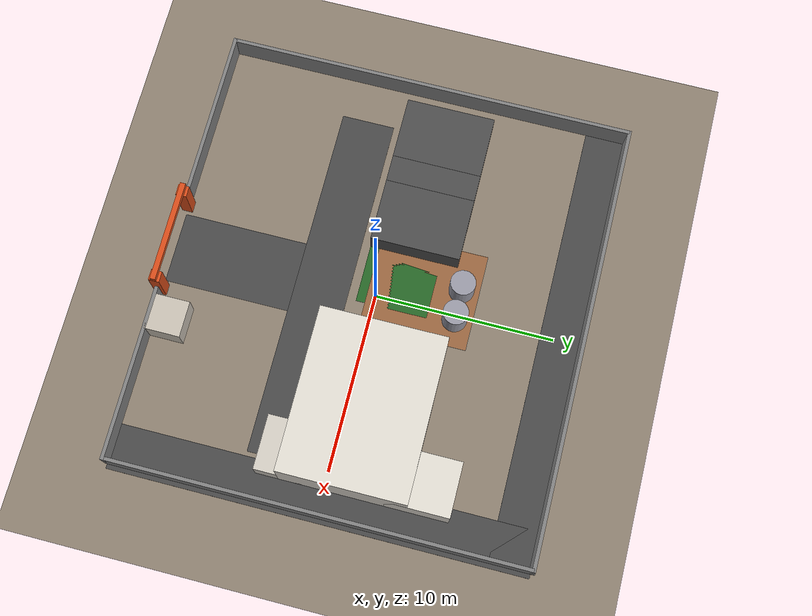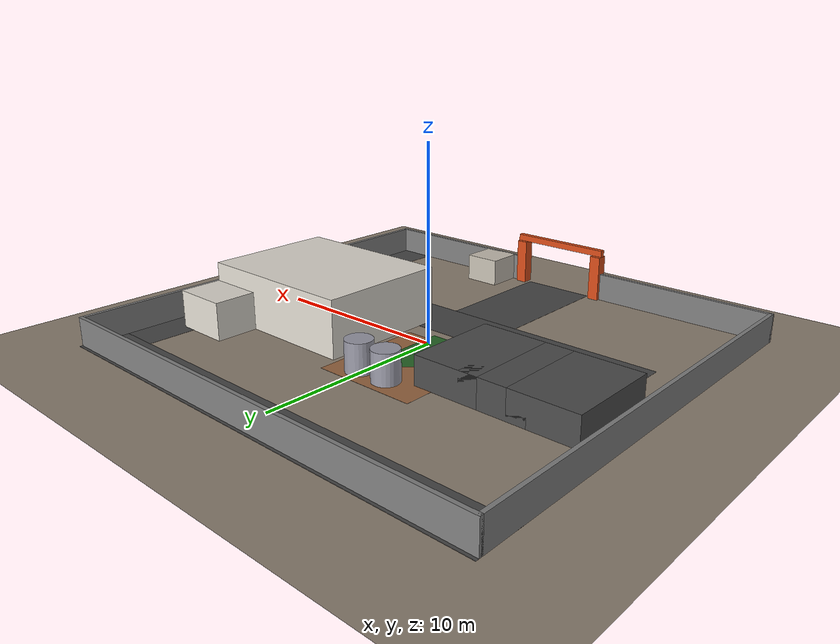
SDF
<?xml version="1.0" encoding="utf-8"?>
<sdf version="1.6">
  <world name="nrsc_jeedimetla">

    <physics type="ode">
      <max_step_size>0.01</max_step_size>
    </physics>

    <!-- GROUND PLANE — sandy/dirt tone matching Bhuvan aerial -->
    <model name="ground_plane">
      <static>true</static>
      <link name="link">
        <collision name="collision">
          <geometry><plane><normal>0 0 1</normal><size>30 30</size></plane></geometry>
        </collision>
        <visual name="visual">
          <geometry><plane><normal>0 0 1</normal><size>30 30</size></plane></geometry>
          <material><ambient>0.55 0.50 0.44 1</ambient><diffuse>0.55 0.50 0.44 1</diffuse></material>
        </visual>
      </link>
    </model>

    <!-- ROADS                                                         -->

    <!-- Top horizontal road along north boundary -->
    <model name="road_top_horizontal">
      <static>true</static>
      <pose>0 10.5 0.005 0 0 0</pose>
      <link name="link">
        <visual name="visual">
          <geometry><box><size>25 2.5 0.01</size></box></geometry>
          <material><ambient>0.28 0.28 0.28 1</ambient><diffuse>0.28 0.28 0.28 1</diffuse></material>
        </visual>
        <collision name="collision"><geometry><box><size>25 2.5 0.01</size></box></geometry></collision>
      </link>
    </model>

    <!-- Right vertical road along east boundary -->
    <model name="road_right_vertical">
      <static>true</static>
      <pose>11.5 0 0.005 0 0 0</pose>
      <link name="link">
        <visual name="visual">
          <geometry><box><size>2.5 23 0.01</size></box></geometry>
          <material><ambient>0.28 0.28 0.28 1</ambient><diffuse>0.28 0.28 0.28 1</diffuse></material>
        </visual>
        <collision name="collision"><geometry><box><size>2.5 23 0.01</size></box></geometry></collision>
      </link>
    </model>

    <!-- Main entrance road from south gate inward -->
    <model name="road_main_entrance">
      <static>true</static>
      <pose>0 -8.0 0.005 0 0 0</pose>
      <link name="link">
        <visual name="visual">
          <geometry><box><size>4 7 0.01</size></box></geometry>
          <material><ambient>0.28 0.28 0.28 1</ambient><diffuse>0.28 0.28 0.28 1</diffuse></material>
        </visual>
        <collision name="collision"><geometry><box><size>4 7 0.01</size></box></geometry></collision>
      </link>
    </model>

    <!-- Internal road between warehouse block and main building -->
    <model name="road_internal_ew">
      <static>true</static>
      <pose>0 -3.0 0.005 0 0 0</pose>
      <link name="link">
        <visual name="visual">
          <geometry><box><size>20 3 0.01</size></box></geometry>
          <material><ambient>0.28 0.28 0.28 1</ambient><diffuse>0.28 0.28 0.28 1</diffuse></material>
        </visual>
        <collision name="collision"><geometry><box><size>20 3 0.01</size></box></geometry></collision>
      </link>
    </model>

    <!-- OPEN DIRT GROUND (reddish-brown, centre of campus)           -->
    <model name="open_ground_centre">
      <static>true</static>
      <pose>-1.0 2.5 0.003 0 0 0</pose>
      <link name="link">
        <visual name="visual">
          <geometry><box><size>5.5 6 0.006</size></box></geometry>
          <material><ambient>0.60 0.40 0.25 1</ambient><diffuse>0.60 0.40 0.25 1</diffuse></material>
        </visual>
        <collision name="collision"><geometry><box><size>5.5 6 0.006</size></box></geometry></collision>
      </link>
    </model>

    <!-- TREE CLUSTER (dark green, centre campus)                     -->
    <model name="trees_centre">
      <static>true</static>
      <pose>-1.5 1.0 0.003 0 0 0</pose>
      <link name="link">
        <visual name="visual">
          <geometry><box><size>4 4 0.006</size></box></geometry>
          <material><ambient>0.15 0.40 0.15 1</ambient><diffuse>0.15 0.40 0.15 1</diffuse></material>
        </visual>
        <collision name="collision"><geometry><box><size>4 4 0.006</size></box></geometry></collision>
      </link>
    </model>

    <!-- LEFT WAREHOUSE / SOLAR PANEL BUILDINGS (3 sections, west)    -->
    <!-- Dark-roofed industrial buildings visible on Bhuvan image     -->
    <model name="building_warehouse_A">
      <static>true</static>
      <pose>-9.5 1.5 0.75 0 0 0</pose>
      <link name="link">
        <visual name="visual">
          <geometry><box><size>3.5 5.0 1.5</size></box></geometry>
          <material><ambient>0.30 0.30 0.30 1</ambient><diffuse>0.30 0.30 0.30 1</diffuse></material>
        </visual>
        <collision name="collision"><geometry><box><size>3.5 5.0 1.5</size></box></geometry></collision>
      </link>
    </model>

    <model name="building_warehouse_B">
      <static>true</static>
      <pose>-7.0 1.5 0.75 0 0 0</pose>
      <link name="link">
        <visual name="visual">
          <geometry><box><size>3.5 5.0 1.5</size></box></geometry>
          <material><ambient>0.30 0.30 0.30 1</ambient><diffuse>0.30 0.30 0.30 1</diffuse></material>
        </visual>
        <collision name="collision"><geometry><box><size>3.5 5.0 1.5</size></box></geometry></collision>
      </link>
    </model>

    <model name="building_warehouse_C">
      <static>true</static>
      <pose>-4.5 1.5 0.75 0 0 0</pose>
      <link name="link">
        <visual name="visual">
          <geometry><box><size>3.5 5.0 1.5</size></box></geometry>
          <material><ambient>0.30 0.30 0.30 1</ambient><diffuse>0.30 0.30 0.30 1</diffuse></material>
        </visual>
        <collision name="collision"><geometry><box><size>3.5 5.0 1.5</size></box></geometry></collision>
      </link>
    </model>

    <!-- CIRCULAR WATER TANKS (2 cylinders visible top-centre)        -->
    <model name="tank_left">
      <static>true</static>
      <pose>-1.5 4.5 0.8 0 0 0</pose>
      <link name="link">
        <visual name="visual">
          <geometry><cylinder><radius>0.7</radius><length>1.6</length></cylinder></geometry>
          <material><ambient>0.60 0.60 0.65 1</ambient><diffuse>0.60 0.60 0.65 1</diffuse></material>
        </visual>
        <collision name="collision"><geometry><cylinder><radius>0.7</radius><length>1.6</length></cylinder></geometry></collision>
      </link>
    </model>

    <model name="tank_right">
      <static>true</static>
      <pose>0.2 4.5 0.8 0 0 0</pose>
      <link name="link">
        <visual name="visual">
          <geometry><cylinder><radius>0.7</radius><length>1.6</length></cylinder></geometry>
          <material><ambient>0.60 0.60 0.65 1</ambient><diffuse>0.60 0.60 0.65 1</diffuse></material>
        </visual>
        <collision name="collision"><geometry><cylinder><radius>0.7</radius><length>1.6</length></cylinder></geometry></collision>
      </link>
    </model>

    <!-- MAIN BUILDING — RIGHT SIDE (large light block, east campus)  -->
    <!-- L-shaped: main block + north extension + south annex         -->
    <model name="building_main_block">
      <static>true</static>
      <pose>6.5 1.0 1.5 0 0 0</pose>
      <link name="link">
        <visual name="visual">
          <geometry><box><size>9.0 7.0 3.0</size></box></geometry>
          <material><ambient>0.88 0.86 0.82 1</ambient><diffuse>0.88 0.86 0.82 1</diffuse></material>
        </visual>
        <collision name="collision"><geometry><box><size>9.0 7.0 3.0</size></box></geometry></collision>
      </link>
    </model>

    <model name="building_main_north_ext">
      <static>true</static>
      <pose>9.5 5.0 1.0 0 0 0</pose>
      <link name="link">
        <visual name="visual">
          <geometry><box><size>3.0 3.5 2.0</size></box></geometry>
          <material><ambient>0.88 0.86 0.82 1</ambient><diffuse>0.88 0.86 0.82 1</diffuse></material>
        </visual>
        <collision name="collision"><geometry><box><size>3.0 3.5 2.0</size></box></geometry></collision>
      </link>
    </model>

    <model name="building_annex_se">
      <static>true</static>
      <pose>9.5 -2.5 0.75 0 0 0</pose>
      <link name="link">
        <visual name="visual">
          <geometry><box><size>3.0 2.5 1.5</size></box></geometry>
          <material><ambient>0.82 0.80 0.76 1</ambient><diffuse>0.82 0.80 0.76 1</diffuse></material>
        </visual>
        <collision name="collision"><geometry><box><size>3.0 2.5 1.5</size></box></geometry></collision>
      </link>
    </model>

    <!-- PERIMETER WALLS — 0.2m thick, 1.5m tall                     -->
    <model name="wall_north">
      <static>true</static>
      <pose>0 11.5 0.75 0 0 0</pose>
      <link name="link">
        <visual name="visual">
          <geometry><box><size>25 0.2 1.5</size></box></geometry>
          <material><ambient>0.50 0.50 0.50 1</ambient><diffuse>0.50 0.50 0.50 1</diffuse></material>
        </visual>
        <collision name="collision"><geometry><box><size>25 0.2 1.5</size></box></geometry></collision>
      </link>
    </model>

    <model name="wall_south_left">
      <static>true</static>
      <pose>-7.5 -11.5 0.75 0 0 0</pose>
      <link name="link">
        <visual name="visual">
          <geometry><box><size>10 0.2 1.5</size></box></geometry>
          <material><ambient>0.50 0.50 0.50 1</ambient><diffuse>0.50 0.50 0.50 1</diffuse></material>
        </visual>
        <collision name="collision"><geometry><box><size>10 0.2 1.5</size></box></geometry></collision>
      </link>
    </model>

    <model name="wall_south_right">
      <static>true</static>
      <pose>7.5 -11.5 0.75 0 0 0</pose>
      <link name="link">
        <visual name="visual">
          <geometry><box><size>10 0.2 1.5</size></box></geometry>
          <material><ambient>0.50 0.50 0.50 1</ambient><diffuse>0.50 0.50 0.50 1</diffuse></material>
        </visual>
        <collision name="collision"><geometry><box><size>10 0.2 1.5</size></box></geometry></collision>
      </link>
    </model>

    <model name="wall_west">
      <static>true</static>
      <pose>-12.4 0 0.75 0 0 0</pose>
      <link name="link">
        <visual name="visual">
          <geometry><box><size>0.2 23 1.5</size></box></geometry>
          <material><ambient>0.50 0.50 0.50 1</ambient><diffuse>0.50 0.50 0.50 1</diffuse></material>
        </visual>
        <collision name="collision"><geometry><box><size>0.2 23 1.5</size></box></geometry></collision>
      </link>
    </model>

    <model name="wall_east">
      <static>true</static>
      <pose>12.4 0 0.75 0 0 0</pose>
      <link name="link">
        <visual name="visual">
          <geometry><box><size>0.2 23 1.5</size></box></geometry>
          <material><ambient>0.50 0.50 0.50 1</ambient><diffuse>0.50 0.50 0.50 1</diffuse></material>
        </visual>
        <collision name="collision"><geometry><box><size>0.2 23 1.5</size></box></geometry></collision>
      </link>
    </model>

    <!-- MAIN GATE — south centre, 5m opening, orange-red pillars     -->
    <model name="gate_pillar_left">
      <static>true</static>
      <pose>-2.5 -11.5 1.25 0 0 0</pose>
      <link name="link">
        <visual name="visual">
          <geometry><box><size>0.6 0.6 2.5</size></box></geometry>
          <material><ambient>0.85 0.30 0.10 1</ambient><diffuse>0.85 0.30 0.10 1</diffuse></material>
        </visual>
        <collision name="collision"><geometry><box><size>0.6 0.6 2.5</size></box></geometry></collision>
      </link>
    </model>

    <model name="gate_pillar_right">
      <static>true</static>
      <pose>2.5 -11.5 1.25 0 0 0</pose>
      <link name="link">
        <visual name="visual">
          <geometry><box><size>0.6 0.6 2.5</size></box></geometry>
          <material><ambient>0.85 0.30 0.10 1</ambient><diffuse>0.85 0.30 0.10 1</diffuse></material>
        </visual>
        <collision name="collision"><geometry><box><size>0.6 0.6 2.5</size></box></geometry></collision>
      </link>
    </model>

    <model name="gate_beam">
      <static>true</static>
      <pose>0 -11.5 2.70 0 0 0</pose>
      <link name="link">
        <visual name="visual">
          <geometry><box><size>5.6 0.3 0.35</size></box></geometry>
          <material><ambient>0.85 0.30 0.10 1</ambient><diffuse>0.85 0.30 0.10 1</diffuse></material>
        </visual>
        <collision name="collision"><geometry><box><size>5.6 0.3 0.35</size></box></geometry></collision>
      </link>
    </model>

    <model name="gate_guardroom">
      <static>true</static>
      <pose>4.2 -10.5 0.75 0 0 0</pose>
      <link name="link">
        <visual name="visual">
          <geometry><box><size>2.0 2.0 1.5</size></box></geometry>
          <material><ambient>0.78 0.75 0.70 1</ambient><diffuse>0.78 0.75 0.70 1</diffuse></material>
        </visual>
        <collision name="collision"><geometry><box><size>2.0 2.0 1.5</size></box></geometry></collision>
      </link>
    </model>

  </world>
</sdf>
